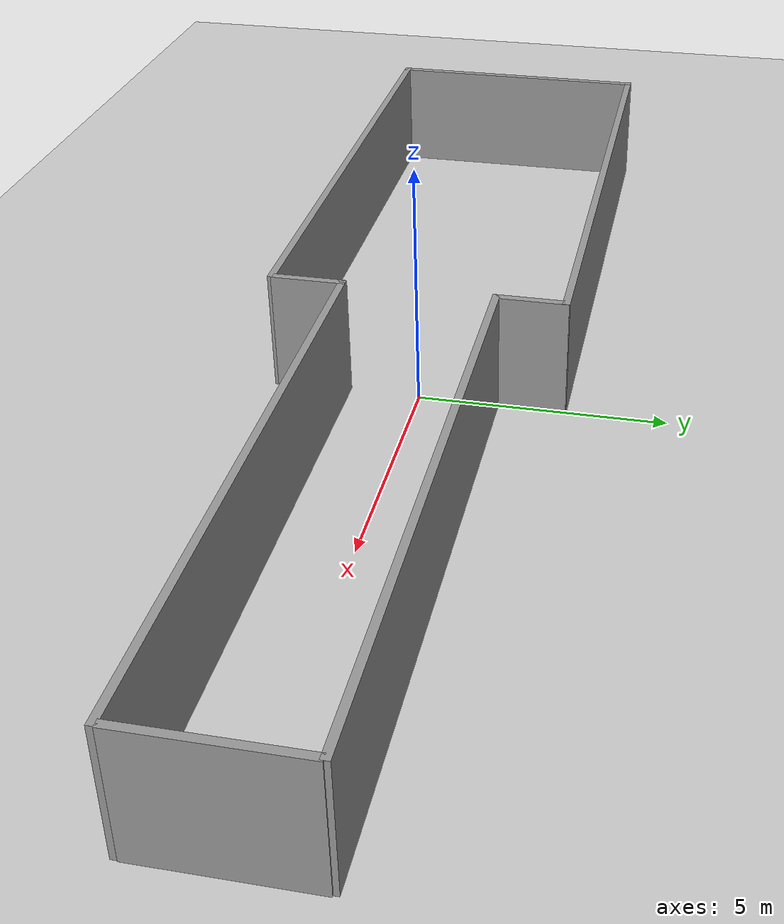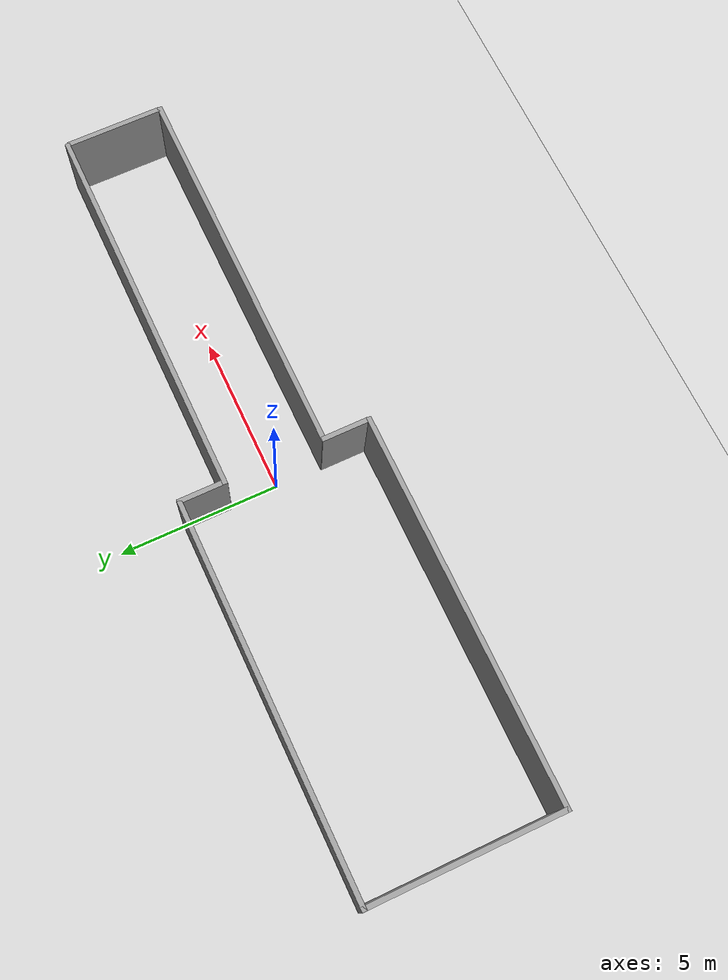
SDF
<sdf version="1.7">
 <world name="default">
  <light name="sun" type="directional">
   <pose>0 0 10 0 -0 0</pose>
   <diffuse>0.8 0.8 0.8 1</diffuse>
   <specular>0.2 0.2 0.2 1</specular>
   <attenuation>
    <range>1000</range>
    <constant>0.9</constant>
    <linear>0.01</linear>
    <quadratic>0.001</quadratic>
   </attenuation>
   <direction>-0.5 0.1 -0.9</direction>
   <spot><inner_angle>0</inner_angle><outer_angle>0</outer_angle><falloff>0</falloff></spot>
  </light>
  <model name="ground_plane">
   <static>1</static>
   <link name="link">
    <collision name="collision">
     <geometry><plane><normal>0 0 1</normal><size>100 100</size></plane></geometry>
     <surface>
      <contact><collide_bitmask>65535</collide_bitmask></contact>
      <friction><ode><mu>100</mu><mu2>50</mu2></ode></friction>
     </surface>
    </collision>
    <visual name="visual">
     <cast_shadows>0</cast_shadows>
     <geometry><plane><normal>0 0 1</normal><size>100 100</size></plane></geometry>
     <material>
      <script><uri>file://media/materials/scripts/gazebo.material</uri><name>Gazebo/Grey</name></script>
     </material>
    </visual>
   </link>
  </model>
  <gravity>0 0 -9.8</gravity>
  <magnetic_field>6e-06 2.3e-05 -4.2e-05</magnetic_field>
  <atmosphere type="adiabatic"/>
  <physics type="ode">
   <max_step_size>0.001</max_step_size>
   <real_time_factor>1</real_time_factor>
   <real_time_update_rate>1000</real_time_update_rate>
  </physics>
  <scene><ambient>0.4 0.4 0.4 1</ambient><background>0.7 0.7 0.7 1</background><shadows>1</shadows></scene>
  <spherical_coordinates>
   <surface_model>EARTH_WGS84</surface_model>
   <latitude_deg>0</latitude_deg>
   <longitude_deg>0</longitude_deg>
   <elevation>0</elevation>
   <heading_deg>0</heading_deg>
  </spherical_coordinates>
  <model name="hl_24m_6m_3m">
   <pose>-0.0003 0.001503 0 0 -0 0</pose>
   <link name="Wall_10">
    <collision name="Wall_10_Collision">
     <geometry><box><size>6 0.15 2.5</size></box></geometry>
     <pose>0 0 1.25 0 -0 0</pose>
    </collision>
    <visual name="Wall_10_Visual">
     <pose>0 0 1.25 0 -0 0</pose>
     <geometry><box><size>6 0.15 2.5</size></box></geometry>
     <material>
      <script><uri>file://media/materials/scripts/gazebo.material</uri><name>Gazebo/Grey</name></script>
      <ambient>1 1 1 1</ambient>
     </material>
     <meta><layer>0</layer></meta>
    </visual>
    <pose>-11.8669 0.002416 0 0 -0 -1.5708</pose>
   </link>
   <link name="Wall_13">
    <collision name="Wall_13_Collision">
     <geometry><box><size>1.5 0.15 2.5</size></box></geometry>
     <pose>0 0 1.25 0 -0 0</pose>
    </collision>
    <visual name="Wall_13_Visual">
     <pose>0 0 1.25 0 -0 0</pose>
     <geometry><box><size>1.5 0.15 2.5</size></box></geometry>
     <material>
      <script><uri>file://media/materials/scripts/gazebo.material</uri><name>Gazebo/Grey</name></script>
      <ambient>1 1 1 1</ambient>
     </material>
     <meta><layer>0</layer></meta>
    </visual>
    <pose>-0.0062 2.23979 0 0 -0 -1.5708</pose>
   </link>
   <link name="Wall_15">
    <collision name="Wall_15_Collision">
     <geometry><box><size>1.5 0.15 2.5</size></box></geometry>
     <pose>0 0 1.25 0 -0 0</pose>
    </collision>
    <visual name="Wall_15_Visual">
     <pose>0 0 1.25 0 -0 0</pose>
     <geometry><box><size>1.5 0.15 2.5</size></box></geometry>
     <material>
      <script><uri>file://media/materials/scripts/gazebo.material</uri><name>Gazebo/Grey</name></script>
      <ambient>1 1 1 1</ambient>
     </material>
     <meta><layer>0</layer></meta>
    </visual>
    <pose>-0.0062 -2.18561 0 0 -0 -1.5708</pose>
   </link>
   <link name="Wall_17">
    <collision name="Wall_17_Collision">
     <geometry><box><size>3 0.15 2.5</size></box></geometry>
     <pose>0 0 1.25 0 -0 0</pose>
    </collision>
    <visual name="Wall_17_Visual">
     <pose>0 0 1.25 0 -0 0</pose>
     <geometry><box><size>3 0.15 2.5</size></box></geometry>
     <material>
      <script><uri>file://media/materials/scripts/gazebo.material</uri><name>Gazebo/Grey</name></script>
      <ambient>1 1 1 1</ambient>
     </material>
     <meta><layer>0</layer></meta>
    </visual>
    <pose>11.8712 0.043852 0 0 -0 -1.5708</pose>
   </link>
   <link name="Wall_2">
    <collision name="Wall_2_Collision">
     <geometry><box><size>12 0.15 2.5</size></box></geometry>
     <pose>0 0 1.25 0 -0 0</pose>
    </collision>
    <visual name="Wall_2_Visual">
     <pose>0 0 1.25 0 -0 0</pose>
     <geometry><box><size>12 0.15 2.5</size></box></geometry>
     <material>
      <script><uri>file://media/materials/scripts/gazebo.material</uri><name>Gazebo/Grey</name></script>
      <ambient>1 1 1 1</ambient>
     </material>
     <meta><layer>0</layer></meta>
    </visual>
    <pose>-5.94623 2.92899 0 0 -0 0</pose>
   </link>
   <link name="Wall_4">
    <collision name="Wall_4_Collision">
     <geometry><box><size>12 0.15 2.5</size></box></geometry>
     <pose>0 0 1.25 0 -0 0</pose>
    </collision>
    <visual name="Wall_4_Visual">
     <pose>0 0 1.25 0 -0 0</pose>
     <geometry><box><size>12 0.15 2.5</size></box></geometry>
     <material>
      <script><uri>file://media/materials/scripts/gazebo.material</uri><name>Gazebo/Grey</name></script>
      <ambient>1 1 1 1</ambient>
     </material>
     <meta><layer>0</layer></meta>
    </visual>
    <pose>5.92009 1.56099 0 0 -0 0</pose>
   </link>
   <link name="Wall_6">
    <collision name="Wall_6_Collision">
     <geometry><box><size>12 0.15 2.5</size></box></geometry>
     <pose>0 0 1.25 0 -0 0</pose>
    </collision>
    <visual name="Wall_6_Visual">
     <pose>0 0 1.25 0 -0 0</pose>
     <geometry><box><size>12 0.15 2.5</size></box></geometry>
     <material>
      <script><uri>file://media/materials/scripts/gazebo.material</uri><name>Gazebo/Grey</name></script>
      <ambient>1 1 1 1</ambient>
     </material>
     <meta><layer>0</layer></meta>
    </visual>
    <pose>5.93239 -1.49496 0 0 -0 0</pose>
   </link>
   <link name="Wall_8">
    <collision name="Wall_8_Collision">
     <geometry><box><size>12 0.15 2.5</size></box></geometry>
     <pose>0 0 1.25 0 -0 0</pose>
    </collision>
    <visual name="Wall_8_Visual">
     <pose>0 0 1.25 0 -0 0</pose>
     <geometry><box><size>12 0.15 2.5</size></box></geometry>
     <material>
      <script><uri>file://media/materials/scripts/gazebo.material</uri><name>Gazebo/Grey</name></script>
      <ambient>1 1 1 1</ambient>
     </material>
     <meta><layer>0</layer></meta>
    </visual>
    <pose>-5.94013 -2.92899 0 0 -0 0</pose>
   </link>
   <static>1</static>
  </model>
  <model name="actor30_collision">
   <pose>10 0.5 0.9 0 -0 3.14</pose>
   <link name="body">
    <pose>0 0 0.85 0 0 0</pose>
    <visual name="visual">
     <geometry><cylinder><radius>0.15</radius><length>1.7</length></cylinder></geometry>
     <transparency>1</transparency>
     <cast_shadows>0</cast_shadows>
    </visual>
    <collision name="collision">
     <geometry><cylinder><radius>0.15</radius><length>1.7</length></cylinder></geometry>
     <surface>
      <friction>
       <ode><mu>1</mu><mu2>1</mu2><fdir1>0 0 0</fdir1><slip1>0</slip1><slip2>0</slip2></ode>
       <torsional>
        <coefficient>1</coefficient>
        <patch_radius>0</patch_radius>
        <surface_radius>0</surface_radius>
        <use_patch_radius>1</use_patch_radius>
        <ode><slip>0</slip></ode>
       </torsional>
      </friction>
      <bounce><restitution_coefficient>0</restitution_coefficient><threshold>1e+06</threshold></bounce>
      <contact>
       <collide_without_contact>0</collide_without_contact>
       <collide_without_contact_bitmask>1</collide_without_contact_bitmask>
       <collide_bitmask>1</collide_bitmask>
       <ode>
        <soft_cfm>0</soft_cfm>
        <soft_erp>0.2</soft_erp>
        <kp>1e+13</kp>
        <kd>1</kd>
        <max_vel>0.01</max_vel>
        <min_depth>0</min_depth>
       </ode>
       <bullet>
        <split_impulse>1</split_impulse>
        <split_impulse_penetration_threshold>-0.01</split_impulse_penetration_threshold>
        <soft_cfm>0</soft_cfm>
        <soft_erp>0.2</soft_erp>
        <kp>1e+13</kp>
        <kd>1</kd>
       </bullet>
      </contact>
     </surface>
    </collision>
   </link>
   <static>0</static>
   <plugin name="actor30_collision_follower" filename="libgazebo_actor_pose_follower.so">
    <target>actor30</target>
   </plugin>
  </model>
  <model name="actor31_collision">
   <pose>8 -0.5 0.9 0 -0 3.14</pose>
   <link name="body">
    <pose>0 0 0.85 0 0 0</pose>
    <visual name="visual">
     <geometry><cylinder><radius>0.15</radius><length>1.7</length></cylinder></geometry>
     <transparency>1</transparency>
     <cast_shadows>0</cast_shadows>
    </visual>
    <collision name="collision">
     <geometry><cylinder><radius>0.15</radius><length>1.7</length></cylinder></geometry>
     <surface>
      <friction>
       <ode><mu>1</mu><mu2>1</mu2><fdir1>0 0 0</fdir1><slip1>0</slip1><slip2>0</slip2></ode>
       <torsional>
        <coefficient>1</coefficient>
        <patch_radius>0</patch_radius>
        <surface_radius>0</surface_radius>
        <use_patch_radius>1</use_patch_radius>
        <ode><slip>0</slip></ode>
       </torsional>
      </friction>
      <bounce><restitution_coefficient>0</restitution_coefficient><threshold>1e+06</threshold></bounce>
      <contact>
       <collide_without_contact>0</collide_without_contact>
       <collide_without_contact_bitmask>1</collide_without_contact_bitmask>
       <collide_bitmask>1</collide_bitmask>
       <ode>
        <soft_cfm>0</soft_cfm>
        <soft_erp>0.2</soft_erp>
        <kp>1e+13</kp>
        <kd>1</kd>
        <max_vel>0.01</max_vel>
        <min_depth>0</min_depth>
       </ode>
       <bullet>
        <split_impulse>1</split_impulse>
        <split_impulse_penetration_threshold>-0.01</split_impulse_penetration_threshold>
        <soft_cfm>0</soft_cfm>
        <soft_erp>0.2</soft_erp>
        <kp>1e+13</kp>
        <kd>1</kd>
       </bullet>
      </contact>
     </surface>
    </collision>
   </link>
   <static>0</static>
   <plugin name="actor31_collision_follower" filename="libgazebo_actor_pose_follower.so">
    <target>actor31</target>
   </plugin>
  </model>
  <model name="actor32_collision">
   <pose>-1 1.5 0.9 0 -0 3.14</pose>
   <link name="body">
    <pose>0 0 0.85 0 0 0</pose>
    <visual name="visual">
     <geometry><cylinder><radius>0.15</radius><length>1.7</length></cylinder></geometry>
     <transparency>1</transparency>
     <cast_shadows>0</cast_shadows>
    </visual>
    <collision name="collision">
     <geometry><cylinder><radius>0.15</radius><length>1.7</length></cylinder></geometry>
     <surface>
      <friction>
       <ode><mu>1</mu><mu2>1</mu2><fdir1>0 0 0</fdir1><slip1>0</slip1><slip2>0</slip2></ode>
       <torsional>
        <coefficient>1</coefficient>
        <patch_radius>0</patch_radius>
        <surface_radius>0</surface_radius>
        <use_patch_radius>1</use_patch_radius>
        <ode><slip>0</slip></ode>
       </torsional>
      </friction>
      <bounce><restitution_coefficient>0</restitution_coefficient><threshold>1e+06</threshold></bounce>
      <contact>
       <collide_without_contact>0</collide_without_contact>
       <collide_without_contact_bitmask>1</collide_without_contact_bitmask>
       <collide_bitmask>1</collide_bitmask>
       <ode>
        <soft_cfm>0</soft_cfm>
        <soft_erp>0.2</soft_erp>
        <kp>1e+13</kp>
        <kd>1</kd>
        <max_vel>0.01</max_vel>
        <min_depth>0</min_depth>
       </ode>
       <bullet>
        <split_impulse>1</split_impulse>
        <split_impulse_penetration_threshold>-0.01</split_impulse_penetration_threshold>
        <soft_cfm>0</soft_cfm>
        <soft_erp>0.2</soft_erp>
        <kp>1e+13</kp>
        <kd>1</kd>
       </bullet>
      </contact>
     </surface>
    </collision>
   </link>
   <static>0</static>
   <plugin name="actor32_collision_follower" filename="libgazebo_actor_pose_follower.so">
    <target>actor32</target>
   </plugin>
  </model>
  <model name="actor33_collision">
   <pose>-2 -1.5 0.9 0 -0 3.14</pose>
   <link name="body">
    <pose>0 0 0.85 0 0 0</pose>
    <visual name="visual">
     <geometry><cylinder><radius>0.15</radius><length>1.7</length></cylinder></geometry>
     <transparency>1</transparency>
     <cast_shadows>0</cast_shadows>
    </visual>
    <collision name="collision">
     <geometry><cylinder><radius>0.15</radius><length>1.7</length></cylinder></geometry>
     <surface>
      <friction>
       <ode><mu>1</mu><mu2>1</mu2><fdir1>0 0 0</fdir1><slip1>0</slip1><slip2>0</slip2></ode>
       <torsional>
        <coefficient>1</coefficient>
        <patch_radius>0</patch_radius>
        <surface_radius>0</surface_radius>
        <use_patch_radius>1</use_patch_radius>
        <ode><slip>0</slip></ode>
       </torsional>
      </friction>
      <bounce><restitution_coefficient>0</restitution_coefficient><threshold>1e+06</threshold></bounce>
      <contact>
       <collide_without_contact>0</collide_without_contact>
       <collide_without_contact_bitmask>1</collide_without_contact_bitmask>
       <collide_bitmask>1</collide_bitmask>
       <ode>
        <soft_cfm>0</soft_cfm>
        <soft_erp>0.2</soft_erp>
        <kp>1e+13</kp>
        <kd>1</kd>
        <max_vel>0.01</max_vel>
        <min_depth>0</min_depth>
       </ode>
       <bullet>
        <split_impulse>1</split_impulse>
        <split_impulse_penetration_threshold>-0.01</split_impulse_penetration_threshold>
        <soft_cfm>0</soft_cfm>
        <soft_erp>0.2</soft_erp>
        <kp>1e+13</kp>
        <kd>1</kd>
       </bullet>
      </contact>
     </surface>
    </collision>
   </link>
   <static>0</static>
   <plugin name="actor33_collision_follower" filename="libgazebo_actor_pose_follower.so">
    <target>actor33</target>
   </plugin>
  </model>
 </world>
</sdf>
